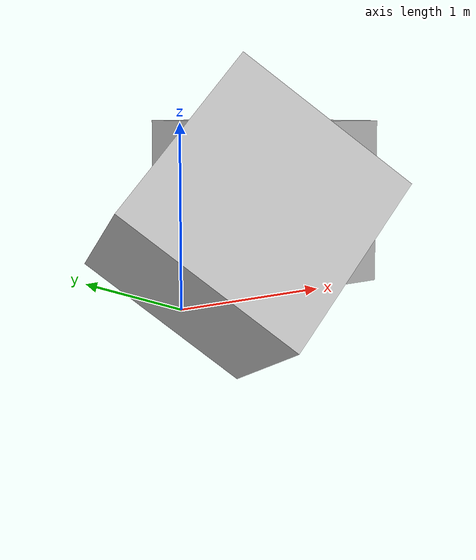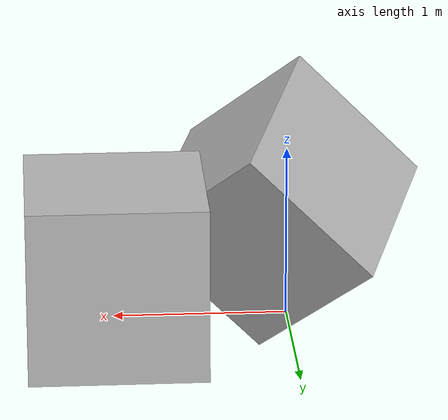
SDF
<?xml version='1.0'?>
<sdf version='1.6'>
		<model name="jointtest">
			<self_collide>true</self_collide>
			<pose>0.0 0.0 0.0 0.0 0.0 0.0</pose>
			<!-- Start of parts of the pmodel jointtest -->
			<!-- End of parts of the pmodel jointtest -->

			<!-- Start of links of the pmodel jointtest -->
			<!-- link full name is jointtest::linkA -->
			<link name="1-linkA">
					<pose>1.0 0.5 0.5 1.5707999467849731 3.141590118408203 0.0</pose>
					<inertial>
						<pose>0.0 0.0 0.0 0.0 0.0 0.0</pose>
						<inertia>
							<ixx>1.0</ixx>
							<ixy>0.0</ixy>
							<ixz>0.0</ixz>
							<iyy>1.0</iyy>
							<iyz>0.0</iyz>
							<izz>1.0</izz>
						</inertia>
						<mass>1.0</mass>
					</inertial>
					<!-- body full name is jointtest::linkA::bodyA -->
					<collision name="1--bodyA">
						<laser_retro>0.0</laser_retro>
						<pose>0.0 0.0 0.0 0.0 0.0 0.0</pose>
						<geometry>
							<box>
								<size>1.0 1.0 1.0</size>
							</box>
						</geometry>
						<surface>
							<bounce>
								<restitution_coefficient>0.0</restitution_coefficient>
								<threshold>100000.0</threshold>
							</bounce>
							<friction>
								<ode>
									<mu>1.0</mu>
									<mu2>1.0</mu2>
									<fdir1>0.0 0.0 0.0</fdir1>
									<slip1>0.0</slip1>
									<slip2>0.0</slip2>
								</ode>
								<torsional>
									<coefficient>1.0</coefficient>
									<surface_radius>0.0</surface_radius>
								</torsional>
							</friction>
						</surface>
					</collision>
					<visual name="1--bodyA">
						<laser_retro>0.0</laser_retro>
						<pose>0.0 0.0 0.0 0.0 0.0 0.0</pose>
						<geometry>
							<box>
								<size>1.0 1.0 1.0</size>
							</box>
						</geometry>
						<surface>
							<bounce>
								<restitution_coefficient>0.0</restitution_coefficient>
								<threshold>100000.0</threshold>
							</bounce>
							<friction>
								<ode>
									<mu>1.0</mu>
									<mu2>1.0</mu2>
									<fdir1>0.0 0.0 0.0</fdir1>
									<slip1>0.0</slip1>
									<slip2>0.0</slip2>
								</ode>
								<torsional>
									<coefficient>1.0</coefficient>
									<surface_radius>0.0</surface_radius>
								</torsional>
							</friction>
						</surface>
					</visual>
			</link>
			<!-- link full name is jointtest::linkB -->
			<link name="2-linkB">
					<pose>0.0 -0.5 0.5 1.0471999645233154 -0.785398006439209 0.0</pose>
					<inertial>
						<pose>0.0 0.0 0.0 0.0 0.0 0.0</pose>
						<inertia>
							<ixx>1.0</ixx>
							<ixy>0.0</ixy>
							<ixz>0.0</ixz>
							<iyy>1.0</iyy>
							<iyz>0.0</iyz>
							<izz>1.0</izz>
						</inertia>
						<mass>1.0</mass>
					</inertial>
					<!-- body full name is jointtest::linkB::bodyB -->
					<collision name="2--bodyB">
						<laser_retro>0.0</laser_retro>
						<pose>0.0 0.0 0.0 0.0 0.0 0.0</pose>
						<geometry>
							<box>
								<size>1.0 1.0 1.0</size>
							</box>
						</geometry>
						<surface>
							<bounce>
								<restitution_coefficient>0.0</restitution_coefficient>
								<threshold>100000.0</threshold>
							</bounce>
							<friction>
								<ode>
									<mu>1.0</mu>
									<mu2>1.0</mu2>
									<fdir1>0.0 0.0 0.0</fdir1>
									<slip1>0.0</slip1>
									<slip2>0.0</slip2>
								</ode>
								<torsional>
									<coefficient>1.0</coefficient>
									<surface_radius>0.0</surface_radius>
								</torsional>
							</friction>
						</surface>
					</collision>
					<visual name="2--bodyB">
						<laser_retro>0.0</laser_retro>
						<pose>0.0 0.0 0.0 0.0 0.0 0.0</pose>
						<geometry>
							<box>
								<size>1.0 1.0 1.0</size>
							</box>
						</geometry>
						<surface>
							<bounce>
								<restitution_coefficient>0.0</restitution_coefficient>
								<threshold>100000.0</threshold>
							</bounce>
							<friction>
								<ode>
									<mu>1.0</mu>
									<mu2>1.0</mu2>
									<fdir1>0.0 0.0 0.0</fdir1>
									<slip1>0.0</slip1>
									<slip2>0.0</slip2>
								</ode>
								<torsional>
									<coefficient>1.0</coefficient>
									<surface_radius>0.0</surface_radius>
								</torsional>
							</friction>
						</surface>
					</visual>
			</link>
			<!-- End of links of the pmodel jointtest -->

			<!-- Start of joints of the pmodel jointtest -->
			<!-- Full name of joint: jointtest::linkB::barAB_joint from jointtest::linkB to jointtest::linkA-->
			<joint name="3-barAB_joint" type="revolute">
				<pose>1.1188836523956525E-8 -0.4999999523756231 -3.386843494546099E-8 2.612423723990503 1.5707927175738476 3.1360228023291707</pose>
				<parent>2-linkB</parent>
				<child>1-linkA</child>
				<!-- WARNING: The SDF generator relies on annotations of the joint 3-barAB_joint to specify in SDF aspects of the joint that are
					 accounted for in the equations. -->
				<axis>
					<xyz>0 0 1</xyz>
				</axis>
			</joint>
			<!-- End of joints of the pmodel jointtest -->

			<!-- Start of fixed connections of the pmodel jointtest -->
			<!-- End of fixed connections of the pmodel jointtest -->
		</model>
</sdf>
